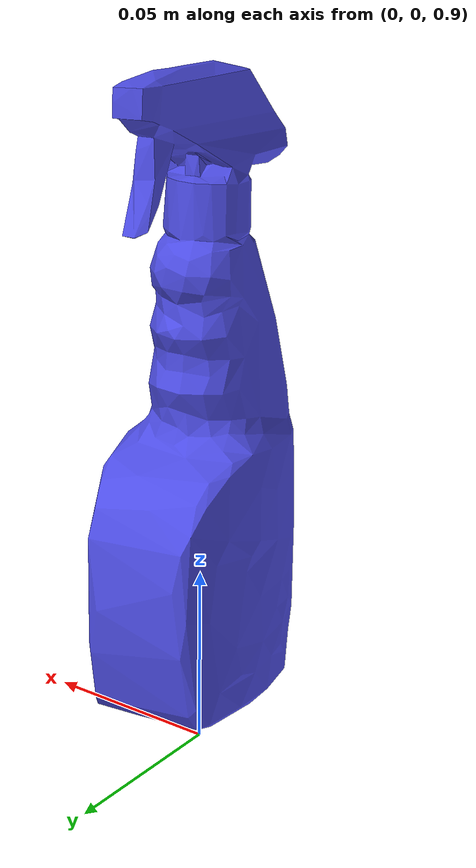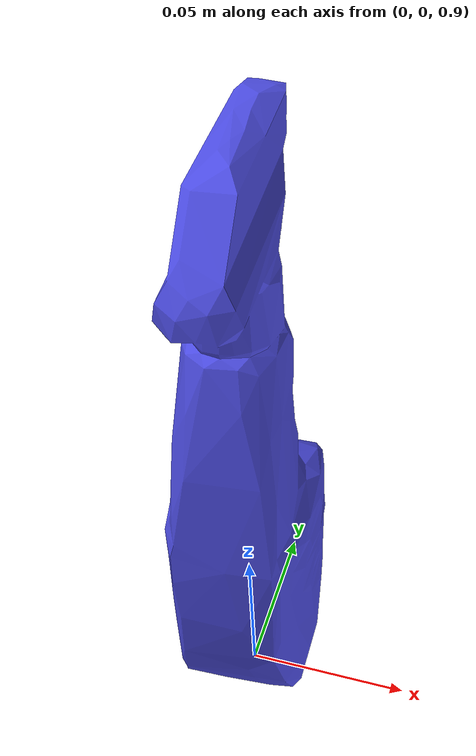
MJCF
<mujoco model="sprayflask">

  <asset>
    <material name="mat" rgba="0.3 0.3 0.9 1." specular="0.5" shininess="0.5"/>
    <mesh file="./objects/sprayflask/sprayflask.obj" scale="1.5 1.5 1.5"/>
  </asset>

  <worldbody>
    <body name="manipulated_object" pos="0 0 1">
      <joint type="free" name="manipulated_object_dof"/>
      <geom type="mesh" mesh="sprayflask" material="mat" euler="0 0 0" group="1"/>
    </body>
  </worldbody>
</mujoco>
